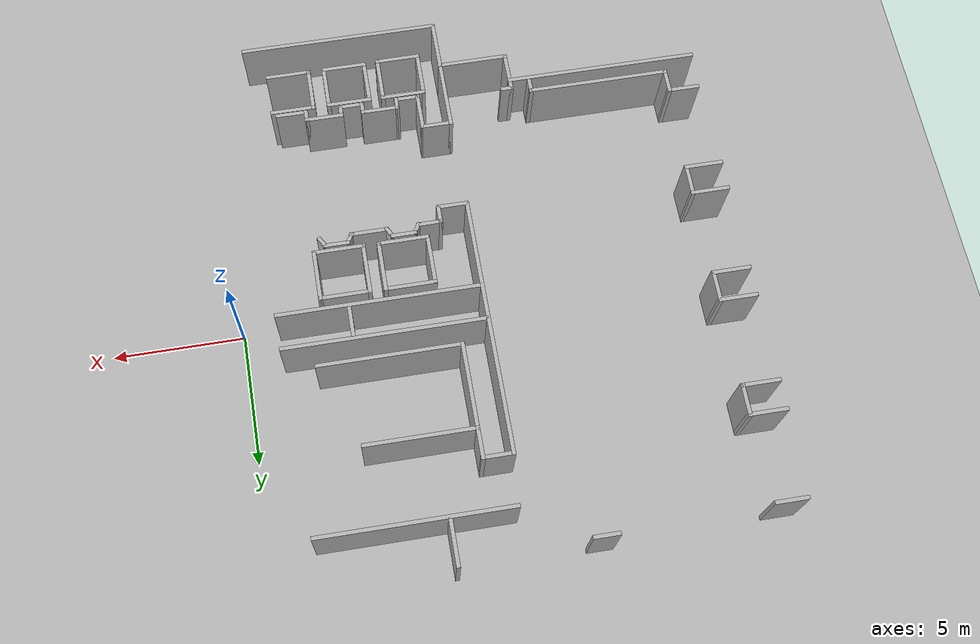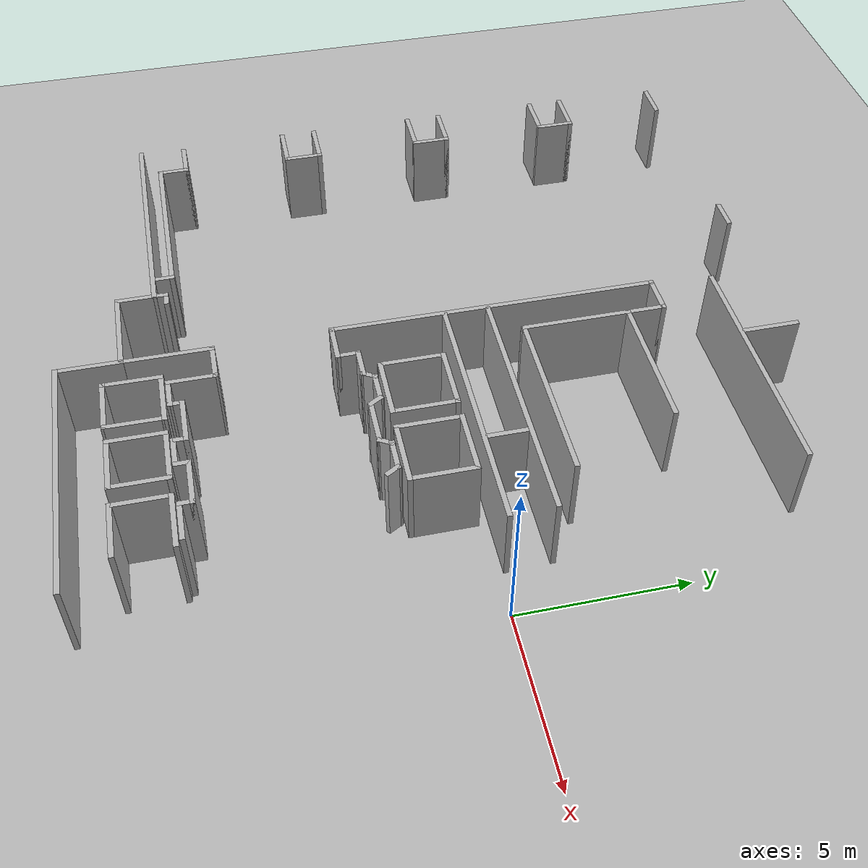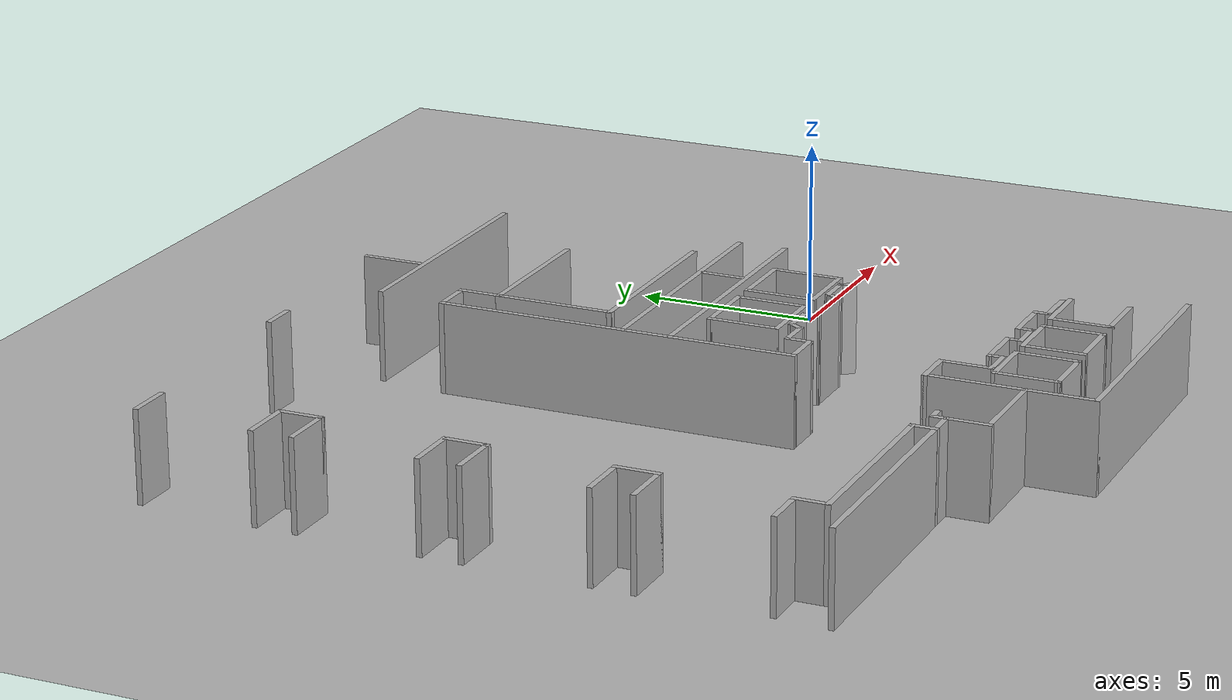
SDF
<sdf version="1.9">
 <world name="tsudanuma2-3">
  <model name="ground_plane">
   <static>true</static>
   <link name="link">
    <collision name="collision">
     <geometry><plane><normal>0 0 1</normal><size>100 100</size></plane></geometry>
     <surface>
      <contact><collide_bitmask>65535</collide_bitmask></contact>
      <friction><ode><mu>100</mu><mu2>50</mu2></ode></friction>
     </surface>
    </collision>
    <visual name="visual">
     <cast_shadows>false</cast_shadows>
     <geometry><plane><normal>0 0 1</normal><size>100 100</size></plane></geometry>
     <material>
      <ambient>0.5 0.5 0.5 1</ambient>
      <diffuse>0.7 0.7 0.7 1</diffuse>
      <specular>0.1 0.1 0.1 1</specular>
     </material>
    </visual>
   </link>
  </model>
  <model name="Tsudanuma_2-3-without_door">
   <pose>11.859500000000001 12.3796 0 0 0 0</pose>
   <link name="Wall_1">
    <collision name="Wall_1_Collision">
     <geometry><box><size>7.4536300000000004 0.14999999999999999 2.5</size></box></geometry>
     <pose>0 0 1.25 0 0 0</pose>
    </collision>
    <visual name="Wall_1_Visual">
     <pose>0 0 1.25 0 0 0</pose>
     <geometry><box><size>7.4536300000000004 0.14999999999999999 2.5</size></box></geometry>
     <material>
      <ambient>0.5 0.5 0.5 1</ambient>
      <diffuse>0.7 0.7 0.7 1</diffuse>
      <specular>0.1 0.1 0.1 1</specular>
     </material>
     <meta><layer>0</layer></meta>
    </visual>
    <pose>-27.1739 -20.558599999999998 0 0 0 -0.00038999999999999994</pose>
   </link>
   <link name="Wall_121">
    <collision name="Wall_121_Collision">
     <geometry><box><size>7.32925 0.14999999999999999 2.5</size></box></geometry>
     <pose>0 0 1.25 0 0 0</pose>
    </collision>
    <visual name="Wall_121_Visual">
     <pose>0 0 1.25 0 0 0</pose>
     <geometry><box><size>7.32925 0.14999999999999999 2.5</size></box></geometry>
     <material>
      <ambient>0.5 0.5 0.5 1</ambient>
      <diffuse>0.7 0.7 0.7 1</diffuse>
      <specular>0.1 0.1 0.1 1</specular>
     </material>
     <meta><layer>0</layer></meta>
    </visual>
    <pose>-17.1797 -3.8258299999999998 0 0 0 0</pose>
   </link>
   <link name="Wall_138">
    <collision name="Wall_138_Collision">
     <geometry><box><size>1.75 0.14999999999999999 2.5</size></box></geometry>
     <pose>0 0 1.25 0 0 0</pose>
    </collision>
    <visual name="Wall_138_Visual">
     <pose>0 0 1.25 0 0 0</pose>
     <geometry><box><size>1.75 0.14999999999999999 2.5</size></box></geometry>
     <material>
      <ambient>0.5 0.5 0.5 1</ambient>
      <diffuse>0.7 0.7 0.7 1</diffuse>
      <specular>0.1 0.1 0.1 1</specular>
     </material>
     <meta><layer>0</layer></meta>
    </visual>
    <pose>-18.371099999999998 -2.9072100000000001 0 0 0 -1.5708</pose>
   </link>
   <link name="Wall_140">
    <collision name="Wall_140_Collision">
     <geometry><box><size>4.25 0.14999999999999999 2.5</size></box></geometry>
     <pose>0 0 1.25 0 0 0</pose>
    </collision>
    <visual name="Wall_140_Visual">
     <pose>0 0 1.25 0 0 0</pose>
     <geometry><box><size>4.25 0.14999999999999999 2.5</size></box></geometry>
     <material>
      <ambient>0.5 0.5 0.5 1</ambient>
      <diffuse>0.7 0.7 0.7 1</diffuse>
      <specular>0.1 0.1 0.1 1</specular>
     </material>
     <meta><layer>0</layer></meta>
    </visual>
    <pose>-17.807400000000001 -6.8076699999999999 0 0 0 3.1415899999999999</pose>
   </link>
   <link name="Wall_141">
    <collision name="Wall_141_Collision">
     <geometry><box><size>1.25 0.14999999999999999 2.5</size></box></geometry>
     <pose>0 0 1.25 0 0 0</pose>
    </collision>
    <visual name="Wall_141_Visual">
     <pose>0 0 1.25 0 0 0</pose>
     <geometry><box><size>1.25 0.14999999999999999 2.5</size></box></geometry>
     <material>
      <ambient>0.5 0.5 0.5 1</ambient>
      <diffuse>0.7 0.7 0.7 1</diffuse>
      <specular>0.1 0.1 0.1 1</specular>
     </material>
     <meta><layer>0</layer></meta>
    </visual>
    <pose>-19.857399999999998 -6.2576700000000001 0 0 0 1.5708</pose>
   </link>
   <link name="Wall_142">
    <collision name="Wall_142_Collision">
     <geometry><box><size>1.25 0.14999999999999999 2.5</size></box></geometry>
     <pose>0 0 1.25 0 0 0</pose>
    </collision>
    <visual name="Wall_142_Visual">
     <pose>0 0 1.25 0 0 0</pose>
     <geometry><box><size>1.25 0.14999999999999999 2.5</size></box></geometry>
     <material>
      <ambient>0.5 0.5 0.5 1</ambient>
      <diffuse>0.7 0.7 0.7 1</diffuse>
      <specular>0.1 0.1 0.1 1</specular>
     </material>
     <meta><layer>0</layer></meta>
    </visual>
    <pose>-20.407399999999999 -5.7076700000000002 0 0 0 3.1415899999999999</pose>
   </link>
   <link name="Wall_143">
    <collision name="Wall_143_Collision">
     <geometry><box><size>10 0.14999999999999999 2.5</size></box></geometry>
     <pose>0 0 1.25 0 0 0</pose>
    </collision>
    <visual name="Wall_143_Visual">
     <pose>0 0 1.25 0 0 0</pose>
     <geometry><box><size>10 0.14999999999999999 2.5</size></box></geometry>
     <material>
      <ambient>0.5 0.5 0.5 1</ambient>
      <diffuse>0.7 0.7 0.7 1</diffuse>
      <specular>0.1 0.1 0.1 1</specular>
     </material>
     <meta><layer>0</layer></meta>
    </visual>
    <pose>-20.9574 -10.6327 0 0 0 -1.5708</pose>
   </link>
   <link name="Wall_144">
    <collision name="Wall_144_Collision">
     <geometry><box><size>1.25 0.14999999999999999 2.5</size></box></geometry>
     <pose>0 0 1.25 0 0 0</pose>
    </collision>
    <visual name="Wall_144_Visual">
     <pose>0 0 1.25 0 0 0</pose>
     <geometry><box><size>1.25 0.14999999999999999 2.5</size></box></geometry>
     <material>
      <ambient>0.5 0.5 0.5 1</ambient>
      <diffuse>0.7 0.7 0.7 1</diffuse>
      <specular>0.1 0.1 0.1 1</specular>
     </material>
     <meta><layer>0</layer></meta>
    </visual>
    <pose>-20.407399999999999 -15.557700000000001 0 0 0 0</pose>
   </link>
   <link name="Wall_145">
    <collision name="Wall_145_Collision">
     <geometry><box><size>0.75 0.14999999999999999 2.5</size></box></geometry>
     <pose>0 0 1.25 0 0 0</pose>
    </collision>
    <visual name="Wall_145_Visual">
     <pose>0 0 1.25 0 0 0</pose>
     <geometry><box><size>0.75 0.14999999999999999 2.5</size></box></geometry>
     <material>
      <ambient>0.5 0.5 0.5 1</ambient>
      <diffuse>0.7 0.7 0.7 1</diffuse>
      <specular>0.1 0.1 0.1 1</specular>
     </material>
     <meta><layer>0</layer></meta>
    </visual>
    <pose>-19.857399999999998 -15.2577 0 0 0 1.5708</pose>
   </link>
   <link name="Wall_146">
    <collision name="Wall_146_Collision">
     <geometry><box><size>1 0.14999999999999999 2.5</size></box></geometry>
     <pose>0 0 1.25 0 0 0</pose>
    </collision>
    <visual name="Wall_146_Visual">
     <pose>0 0 1.25 0 0 0</pose>
     <geometry><box><size>1 0.14999999999999999 2.5</size></box></geometry>
     <material>
      <ambient>0.5 0.5 0.5 1</ambient>
      <diffuse>0.7 0.7 0.7 1</diffuse>
      <specular>0.1 0.1 0.1 1</specular>
     </material>
     <meta><layer>0</layer></meta>
    </visual>
    <pose>-19.432400000000001 -14.957700000000001 0 0 0 0</pose>
   </link>
   <link name="Wall_147">
    <collision name="Wall_147_Collision">
     <geometry><box><size>0.5 0.14999999999999999 2.5</size></box></geometry>
     <pose>0 0 1.25 0 0 0</pose>
    </collision>
    <visual name="Wall_147_Visual">
     <pose>0 0 1.25 0 0 0</pose>
     <geometry><box><size>0.5 0.14999999999999999 2.5</size></box></geometry>
     <material>
      <ambient>0.5 0.5 0.5 1</ambient>
      <diffuse>0.7 0.7 0.7 1</diffuse>
      <specular>0.1 0.1 0.1 1</specular>
     </material>
     <meta><layer>0</layer></meta>
    </visual>
    <pose>-18.919899999999998 -14.806100000000001 0 0 0 1.0471999999999999</pose>
   </link>
   <link name="Wall_148">
    <collision name="Wall_148_Collision">
     <geometry><box><size>1 0.14999999999999999 2.5</size></box></geometry>
     <pose>0 0 1.25 0 0 0</pose>
    </collision>
    <visual name="Wall_148_Visual">
     <pose>0 0 1.25 0 0 0</pose>
     <geometry><box><size>1 0.14999999999999999 2.5</size></box></geometry>
     <material>
      <ambient>0.5 0.5 0.5 1</ambient>
      <diffuse>0.7 0.7 0.7 1</diffuse>
      <specular>0.1 0.1 0.1 1</specular>
     </material>
     <meta><layer>0</layer></meta>
    </visual>
    <pose>-18.407399999999999 -14.6546 0 0 0 0</pose>
   </link>
   <link name="Wall_149">
    <collision name="Wall_149_Collision">
     <geometry><box><size>0.5 0.14999999999999999 2.5</size></box></geometry>
     <pose>0 0 1.25 0 0 0</pose>
    </collision>
    <visual name="Wall_149_Visual">
     <pose>0 0 1.25 0 0 0</pose>
     <geometry><box><size>0.5 0.14999999999999999 2.5</size></box></geometry>
     <material>
      <ambient>0.5 0.5 0.5 1</ambient>
      <diffuse>0.7 0.7 0.7 1</diffuse>
      <specular>0.1 0.1 0.1 1</specular>
     </material>
     <meta><layer>0</layer></meta>
    </visual>
    <pose>-17.8949 -14.806100000000001 0 0 0 -1.0471999999999999</pose>
   </link>
   <link name="Wall_150">
    <collision name="Wall_150_Collision">
     <geometry><box><size>1.5 0.14999999999999999 2.5</size></box></geometry>
     <pose>0 0 1.25 0 0 0</pose>
    </collision>
    <visual name="Wall_150_Visual">
     <pose>0 0 1.25 0 0 0</pose>
     <geometry><box><size>1.5 0.14999999999999999 2.5</size></box></geometry>
     <material>
      <ambient>0.5 0.5 0.5 1</ambient>
      <diffuse>0.7 0.7 0.7 1</diffuse>
      <specular>0.1 0.1 0.1 1</specular>
     </material>
     <meta><layer>0</layer></meta>
    </visual>
    <pose>-17.132400000000001 -14.957700000000001 0 0 0 0</pose>
   </link>
   <link name="Wall_151">
    <collision name="Wall_151_Collision">
     <geometry><box><size>0.5 0.14999999999999999 2.5</size></box></geometry>
     <pose>0 0 1.25 0 0 0</pose>
    </collision>
    <visual name="Wall_151_Visual">
     <pose>0 0 1.25 0 0 0</pose>
     <geometry><box><size>0.5 0.14999999999999999 2.5</size></box></geometry>
     <material>
      <ambient>0.5 0.5 0.5 1</ambient>
      <diffuse>0.7 0.7 0.7 1</diffuse>
      <specular>0.1 0.1 0.1 1</specular>
     </material>
     <meta><layer>0</layer></meta>
    </visual>
    <pose>-16.369900000000001 -14.806100000000001 0 0 0 1.0471999999999999</pose>
   </link>
   <link name="Wall_152">
    <collision name="Wall_152_Collision">
     <geometry><box><size>1 0.14999999999999999 2.5</size></box></geometry>
     <pose>0 0 1.25 0 0 0</pose>
    </collision>
    <visual name="Wall_152_Visual">
     <pose>0 0 1.25 0 0 0</pose>
     <geometry><box><size>1 0.14999999999999999 2.5</size></box></geometry>
     <material>
      <ambient>0.5 0.5 0.5 1</ambient>
      <diffuse>0.7 0.7 0.7 1</diffuse>
      <specular>0.1 0.1 0.1 1</specular>
     </material>
     <meta><layer>0</layer></meta>
    </visual>
    <pose>-15.8574 -14.6546 0 0 0 0</pose>
   </link>
   <link name="Wall_153">
    <collision name="Wall_153_Collision">
     <geometry><box><size>0.5 0.14999999999999999 2.5</size></box></geometry>
     <pose>0 0 1.25 0 0 0</pose>
    </collision>
    <visual name="Wall_153_Visual">
     <pose>0 0 1.25 0 0 0</pose>
     <geometry><box><size>0.5 0.14999999999999999 2.5</size></box></geometry>
     <material>
      <ambient>0.5 0.5 0.5 1</ambient>
      <diffuse>0.7 0.7 0.7 1</diffuse>
      <specular>0.1 0.1 0.1 1</specular>
     </material>
     <meta><layer>0</layer></meta>
    </visual>
    <pose>-15.344900000000001 -14.806100000000001 0 0 0 -1.0471999999999999</pose>
   </link>
   <link name="Wall_160">
    <collision name="Wall_160_Collision">
     <geometry><box><size>5.5 0.14999999999999999 2.5</size></box></geometry>
     <pose>0 0 1.25 0 0 0</pose>
    </collision>
    <visual name="Wall_160_Visual">
     <pose>0 0 1.25 0 0 0</pose>
     <geometry><box><size>5.5 0.14999999999999999 2.5</size></box></geometry>
     <material>
      <ambient>0.5 0.5 0.5 1</ambient>
      <diffuse>0.7 0.7 0.7 1</diffuse>
      <specular>0.1 0.1 0.1 1</specular>
     </material>
     <meta><layer>0</layer></meta>
    </visual>
    <pose>-17.1919 -10.0068 0 0 0 3.1415899999999999</pose>
   </link>
   <link name="Wall_161">
    <collision name="Wall_161_Collision">
     <geometry><box><size>3.3492099999999998 0.14999999999999999 2.5</size></box></geometry>
     <pose>0 0 1.25 0 0 0</pose>
    </collision>
    <visual name="Wall_161_Visual">
     <pose>0 0 1.25 0 0 0</pose>
     <geometry><box><size>3.3492099999999998 0.14999999999999999 2.5</size></box></geometry>
     <material>
      <ambient>0.5 0.5 0.5 1</ambient>
      <diffuse>0.7 0.7 0.7 1</diffuse>
      <specular>0.1 0.1 0.1 1</specular>
     </material>
     <meta><layer>0</layer></meta>
    </visual>
    <pose>-19.857399999999998 -8.4072099999999992 0 0 0 1.5708</pose>
   </link>
   <link name="Wall_165">
    <collision name="Wall_165_Collision">
     <geometry><box><size>7.7000000000000002 0.14999999999999999 2.5</size></box></geometry>
     <pose>0 0 1.25 0 0 0</pose>
    </collision>
    <visual name="Wall_165_Visual">
     <pose>0 0 1.25 0 0 0</pose>
     <geometry><box><size>7.7000000000000002 0.14999999999999999 2.5</size></box></geometry>
     <material>
      <ambient>0.5 0.5 0.5 1</ambient>
      <diffuse>0.7 0.7 0.7 1</diffuse>
      <specular>0.1 0.1 0.1 1</specular>
     </material>
     <meta><layer>0</layer></meta>
    </visual>
    <pose>-17.101900000000001 -10.852499999999999 0 0 0 0</pose>
   </link>
   <link name="Wall_167">
    <collision name="Wall_167_Collision">
     <geometry><box><size>7.75 0.14999999999999999 2.5</size></box></geometry>
     <pose>0 0 1.25 0 0 0</pose>
    </collision>
    <visual name="Wall_167_Visual">
     <pose>0 0 1.25 0 0 0</pose>
     <geometry><box><size>7.75 0.14999999999999999 2.5</size></box></geometry>
     <material>
      <ambient>0.5 0.5 0.5 1</ambient>
      <diffuse>0.7 0.7 0.7 1</diffuse>
      <specular>0.1 0.1 0.1 1</specular>
     </material>
     <meta><layer>0</layer></meta>
    </visual>
    <pose>-17.093499999999999 -12.1708 0 0 0 0</pose>
   </link>
   <link name="Wall_169">
    <collision name="Wall_169_Collision">
     <geometry><box><size>1.25 0.14999999999999999 2.5</size></box></geometry>
     <pose>0 0 1.25 0 0 0</pose>
    </collision>
    <visual name="Wall_169_Visual">
     <pose>0 0 1.25 0 0 0</pose>
     <geometry><box><size>1.25 0.14999999999999999 2.5</size></box></geometry>
     <material>
      <ambient>0.5 0.5 0.5 1</ambient>
      <diffuse>0.7 0.7 0.7 1</diffuse>
      <specular>0.1 0.1 0.1 1</specular>
     </material>
     <meta><layer>0</layer></meta>
    </visual>
    <pose>-15.9785 -11.495100000000001 0 0 0 -1.5708</pose>
   </link>
   <link name="Wall_176">
    <collision name="Wall_176_Collision">
     <geometry><box><size>2.75 0.14999999999999999 2.5</size></box></geometry>
     <pose>0 0 1.25 0 0 0</pose>
    </collision>
    <visual name="Wall_176_Visual">
     <pose>0 0 1.25 0 0 0</pose>
     <geometry><box><size>2.75 0.14999999999999999 2.5</size></box></geometry>
     <material>
      <ambient>0.5 0.5 0.5 1</ambient>
      <diffuse>0.7 0.7 0.7 1</diffuse>
      <specular>0.1 0.1 0.1 1</specular>
     </material>
     <meta><layer>0</layer></meta>
    </visual>
    <pose>-20.9221 -20.359999999999999 0 0 0 1.5708</pose>
   </link>
   <link name="Wall_177">
    <collision name="Wall_177_Collision">
     <geometry><box><size>1.25 0.14999999999999999 2.5</size></box></geometry>
     <pose>0 0 1.25 0 0 0</pose>
    </collision>
    <visual name="Wall_177_Visual">
     <pose>0 0 1.25 0 0 0</pose>
     <geometry><box><size>1.25 0.14999999999999999 2.5</size></box></geometry>
     <material>
      <ambient>0.5 0.5 0.5 1</ambient>
      <diffuse>0.7 0.7 0.7 1</diffuse>
      <specular>0.1 0.1 0.1 1</specular>
     </material>
     <meta><layer>0</layer></meta>
    </visual>
    <pose>-20.3721 -19.059999999999999 0 0 0 0</pose>
   </link>
   <link name="Wall_178">
    <collision name="Wall_178_Collision">
     <geometry><box><size>1.4923500000000001 0.14999999999999999 2.5</size></box></geometry>
     <pose>0 0 1.25 0 0 0</pose>
    </collision>
    <visual name="Wall_178_Visual">
     <pose>0 0 1.25 0 0 0</pose>
     <geometry><box><size>1.4923500000000001 0.14999999999999999 2.5</size></box></geometry>
     <material>
      <ambient>0.5 0.5 0.5 1</ambient>
      <diffuse>0.7 0.7 0.7 1</diffuse>
      <specular>0.1 0.1 0.1 1</specular>
     </material>
     <meta><layer>0</layer></meta>
    </visual>
    <pose>-19.821400000000001 -19.731200000000001 0 0 0 -1.56976</pose>
   </link>
   <link name="Wall_179">
    <collision name="Wall_179_Collision">
     <geometry><box><size>1 0.14999999999999999 2.5</size></box></geometry>
     <pose>0 0 1.25 0 0 0</pose>
    </collision>
    <visual name="Wall_179_Visual">
     <pose>0 0 1.25 0 0 0</pose>
     <geometry><box><size>1 0.14999999999999999 2.5</size></box></geometry>
     <material>
      <ambient>0.5 0.5 0.5 1</ambient>
      <diffuse>0.7 0.7 0.7 1</diffuse>
      <specular>0.1 0.1 0.1 1</specular>
     </material>
     <meta><layer>0</layer></meta>
    </visual>
    <pose>-19.395700000000001 -20.4038 0 0 0 0</pose>
   </link>
   <link name="Wall_180">
    <collision name="Wall_180_Collision">
     <geometry><box><size>0.49235499999999999 0.14999999999999999 2.5</size></box></geometry>
     <pose>0 0 1.25 0 0 0</pose>
    </collision>
    <visual name="Wall_180_Visual">
     <pose>0 0 1.25 0 0 0</pose>
     <geometry><box><size>0.49235499999999999 0.14999999999999999 2.5</size></box></geometry>
     <material>
      <ambient>0.5 0.5 0.5 1</ambient>
      <diffuse>0.7 0.7 0.7 1</diffuse>
      <specular>0.1 0.1 0.1 1</specular>
     </material>
     <meta><layer>0</layer></meta>
    </visual>
    <pose>-18.971399999999999 -20.231200000000001 0 0 0 1.5748500000000001</pose>
   </link>
   <link name="Wall_181">
    <collision name="Wall_181_Collision">
     <geometry><box><size>1.5 0.14999999999999999 2.5</size></box></geometry>
     <pose>0 0 1.25 0 0 0</pose>
    </collision>
    <visual name="Wall_181_Visual">
     <pose>0 0 1.25 0 0 0</pose>
     <geometry><box><size>1.5 0.14999999999999999 2.5</size></box></geometry>
     <material>
      <ambient>0.5 0.5 0.5 1</ambient>
      <diffuse>0.7 0.7 0.7 1</diffuse>
      <specular>0.1 0.1 0.1 1</specular>
     </material>
     <meta><layer>0</layer></meta>
    </visual>
    <pose>-18.2971 -20.059999999999999 0 0 0 0</pose>
   </link>
   <link name="Wall_182">
    <collision name="Wall_182_Collision">
     <geometry><box><size>0.502135 0.14999999999999999 2.5</size></box></geometry>
     <pose>0 0 1.25 0 0 0</pose>
    </collision>
    <visual name="Wall_182_Visual">
     <pose>0 0 1.25 0 0 0</pose>
     <geometry><box><size>0.502135 0.14999999999999999 2.5</size></box></geometry>
     <material>
      <ambient>0.5 0.5 0.5 1</ambient>
      <diffuse>0.7 0.7 0.7 1</diffuse>
      <specular>0.1 0.1 0.1 1</specular>
     </material>
     <meta><layer>0</layer></meta>
    </visual>
    <pose>-17.6221 -20.2361 0 0 0 -1.5708</pose>
   </link>
   <link name="Wall_183">
    <collision name="Wall_183_Collision">
     <geometry><box><size>1 0.14999999999999999 2.5</size></box></geometry>
     <pose>0 0 1.25 0 0 0</pose>
    </collision>
    <visual name="Wall_183_Visual">
     <pose>0 0 1.25 0 0 0</pose>
     <geometry><box><size>1 0.14999999999999999 2.5</size></box></geometry>
     <material>
      <ambient>0.5 0.5 0.5 1</ambient>
      <diffuse>0.7 0.7 0.7 1</diffuse>
      <specular>0.1 0.1 0.1 1</specular>
     </material>
     <meta><layer>0</layer></meta>
    </visual>
    <pose>-17.198499999999999 -20.412199999999999 0 0 0 0</pose>
   </link>
   <link name="Wall_184">
    <collision name="Wall_184_Collision">
     <geometry><box><size>0.502135 0.14999999999999999 2.5</size></box></geometry>
     <pose>0 0 1.25 0 0 0</pose>
    </collision>
    <visual name="Wall_184_Visual">
     <pose>0 0 1.25 0 0 0</pose>
     <geometry><box><size>0.502135 0.14999999999999999 2.5</size></box></geometry>
     <material>
      <ambient>0.5 0.5 0.5 1</ambient>
      <diffuse>0.7 0.7 0.7 1</diffuse>
      <specular>0.1 0.1 0.1 1</specular>
     </material>
     <meta><layer>0</layer></meta>
    </visual>
    <pose>-16.772099999999998 -20.2361 0 0 0 1.5708</pose>
   </link>
   <link name="Wall_185">
    <collision name="Wall_185_Collision">
     <geometry><box><size>1.5 0.14999999999999999 2.5</size></box></geometry>
     <pose>0 0 1.25 0 0 0</pose>
    </collision>
    <visual name="Wall_185_Visual">
     <pose>0 0 1.25 0 0 0</pose>
     <geometry><box><size>1.5 0.14999999999999999 2.5</size></box></geometry>
     <material>
      <ambient>0.5 0.5 0.5 1</ambient>
      <diffuse>0.7 0.7 0.7 1</diffuse>
      <specular>0.1 0.1 0.1 1</specular>
     </material>
     <meta><layer>0</layer></meta>
    </visual>
    <pose>-16.097100000000001 -20.059999999999999 0 0 0 0</pose>
   </link>
   <link name="Wall_186">
    <collision name="Wall_186_Collision">
     <geometry><box><size>0.5 0.14999999999999999 2.5</size></box></geometry>
     <pose>0 0 1.25 0 0 0</pose>
    </collision>
    <visual name="Wall_186_Visual">
     <pose>0 0 1.25 0 0 0</pose>
     <geometry><box><size>0.5 0.14999999999999999 2.5</size></box></geometry>
     <material>
      <ambient>0.5 0.5 0.5 1</ambient>
      <diffuse>0.7 0.7 0.7 1</diffuse>
      <specular>0.1 0.1 0.1 1</specular>
     </material>
     <meta><layer>0</layer></meta>
    </visual>
    <pose>-15.4221 -20.234999999999999 0 0 0 -1.5708</pose>
   </link>
   <link name="Wall_187">
    <collision name="Wall_187_Collision">
     <geometry><box><size>1.25 0.14999999999999999 2.5</size></box></geometry>
     <pose>0 0 1.25 0 0 0</pose>
    </collision>
    <visual name="Wall_187_Visual">
     <pose>0 0 1.25 0 0 0</pose>
     <geometry><box><size>1.25 0.14999999999999999 2.5</size></box></geometry>
     <material>
      <ambient>0.5 0.5 0.5 1</ambient>
      <diffuse>0.7 0.7 0.7 1</diffuse>
      <specular>0.1 0.1 0.1 1</specular>
     </material>
     <meta><layer>0</layer></meta>
    </visual>
    <pose>-14.8721 -20.41 0 0 0 0</pose>
   </link>
   <link name="Wall_2">
    <collision name="Wall_2_Collision">
     <geometry><box><size>1.25 0.14999999999999999 2.5</size></box></geometry>
     <pose>0 0 1.25 0 0 0</pose>
    </collision>
    <visual name="Wall_2_Visual">
     <pose>0 0 1.25 0 0 0</pose>
     <geometry><box><size>1.25 0.14999999999999999 2.5</size></box></geometry>
     <material>
      <ambient>0.5 0.5 0.5 1</ambient>
      <diffuse>0.7 0.7 0.7 1</diffuse>
      <specular>0.1 0.1 0.1 1</specular>
     </material>
     <meta><layer>0</layer></meta>
    </visual>
    <pose>-23.522099999999998 -21.109999999999999 0 0 0 -1.5708</pose>
   </link>
   <link name="Wall_28">
    <collision name="Wall_28_Collision">
     <geometry><box><size>0.5 0.14999999999999999 2.5</size></box></geometry>
     <pose>0 0 1.25 0 0 0</pose>
    </collision>
    <visual name="Wall_28_Visual">
     <pose>0 0 1.25 0 0 0</pose>
     <geometry><box><size>0.5 0.14999999999999999 2.5</size></box></geometry>
     <material>
      <ambient>0.5 0.5 0.5 1</ambient>
      <diffuse>0.7 0.7 0.7 1</diffuse>
      <specular>0.1 0.1 0.1 1</specular>
     </material>
     <meta><layer>0</layer></meta>
    </visual>
    <pose>-23.522099999999998 -20.385000000000002 0 0 0 1.5708</pose>
   </link>
   <link name="Wall_29">
    <collision name="Wall_29_Collision">
     <geometry><box><size>0.5 0.14999999999999999 2.5</size></box></geometry>
     <pose>0 0 1.25 0 0 0</pose>
    </collision>
    <visual name="Wall_29_Visual">
     <pose>0 0 1.25 0 0 0</pose>
     <geometry><box><size>0.5 0.14999999999999999 2.5</size></box></geometry>
     <material>
      <ambient>0.5 0.5 0.5 1</ambient>
      <diffuse>0.7 0.7 0.7 1</diffuse>
      <specular>0.1 0.1 0.1 1</specular>
     </material>
     <meta><layer>0</layer></meta>
    </visual>
    <pose>-23.347100000000001 -20.210000000000001 0 0 0 0</pose>
   </link>
   <link name="Wall_3">
    <collision name="Wall_3_Collision">
     <geometry><box><size>2.75 0.14999999999999999 2.5</size></box></geometry>
     <pose>0 0 1.25 0 0 0</pose>
    </collision>
    <visual name="Wall_3_Visual">
     <pose>0 0 1.25 0 0 0</pose>
     <geometry><box><size>2.75 0.14999999999999999 2.5</size></box></geometry>
     <material>
      <ambient>0.5 0.5 0.5 1</ambient>
      <diffuse>0.7 0.7 0.7 1</diffuse>
      <specular>0.1 0.1 0.1 1</specular>
     </material>
     <meta><layer>0</layer></meta>
    </visual>
    <pose>-22.222100000000001 -21.66 0 0 0 0</pose>
   </link>
   <link name="Wall_4">
    <collision name="Wall_4_Collision">
     <geometry><box><size>2 0.14999999999999999 2.5</size></box></geometry>
     <pose>0 0 1.25 0 0 0</pose>
    </collision>
    <visual name="Wall_4_Visual">
     <pose>0 0 1.25 0 0 0</pose>
     <geometry><box><size>2 0.14999999999999999 2.5</size></box></geometry>
     <material>
      <ambient>0.5 0.5 0.5 1</ambient>
      <diffuse>0.7 0.7 0.7 1</diffuse>
      <specular>0.1 0.1 0.1 1</specular>
     </material>
     <meta><layer>0</layer></meta>
    </visual>
    <pose>-20.9221 -22.585000000000001 0 0 0 -1.5708</pose>
   </link>
   <link name="Wall_451">
    <collision name="Wall_451_Collision">
     <geometry><box><size>0.75 0.14999999999999999 2.5</size></box></geometry>
     <pose>0 0 1.25 0 0 0</pose>
    </collision>
    <visual name="Wall_451_Visual">
     <pose>0 0 1.25 0 0 0</pose>
     <geometry><box><size>0.75 0.14999999999999999 2.5</size></box></geometry>
     <material>
      <ambient>0.5 0.5 0.5 1</ambient>
      <diffuse>0.7 0.7 0.7 1</diffuse>
      <specular>0.1 0.1 0.1 1</specular>
     </material>
     <meta><layer>0</layer></meta>
    </visual>
    <pose>-24.275500000000001 -20.261800000000001 0 0 0 1.5708</pose>
   </link>
   <link name="Wall_452">
    <collision name="Wall_452_Collision">
     <geometry><box><size>5.5130600000000003 0.14999999999999999 2.5</size></box></geometry>
     <pose>0 0 1.25 0 0 0</pose>
    </collision>
    <visual name="Wall_452_Visual">
     <pose>0 0 1.25 0 0 0</pose>
     <geometry><box><size>5.5130600000000003 0.14999999999999999 2.5</size></box></geometry>
     <material>
      <ambient>0.5 0.5 0.5 1</ambient>
      <diffuse>0.7 0.7 0.7 1</diffuse>
      <specular>0.1 0.1 0.1 1</specular>
     </material>
     <meta><layer>0</layer></meta>
    </visual>
    <pose>-26.956900000000001 -19.974599999999999 0 0 0 -3.1415899999999999</pose>
   </link>
   <link name="Wall_453">
    <collision name="Wall_453_Collision">
     <geometry><box><size>1 0.14999999999999999 2.5</size></box></geometry>
     <pose>0 0 1.25 0 0 0</pose>
    </collision>
    <visual name="Wall_453_Visual">
     <pose>0 0 1.25 0 0 0</pose>
     <geometry><box><size>1 0.14999999999999999 2.5</size></box></geometry>
     <material>
      <ambient>0.5 0.5 0.5 1</ambient>
      <diffuse>0.7 0.7 0.7 1</diffuse>
      <specular>0.1 0.1 0.1 1</specular>
     </material>
     <meta><layer>0</layer></meta>
    </visual>
    <pose>-29.638300000000001 -19.549600000000002 0 0 0 1.5708</pose>
   </link>
   <link name="Wall_454">
    <collision name="Wall_454_Collision">
     <geometry><box><size>1.25 0.14999999999999999 2.5</size></box></geometry>
     <pose>0 0 1.25 0 0 0</pose>
    </collision>
    <visual name="Wall_454_Visual">
     <pose>0 0 1.25 0 0 0</pose>
     <geometry><box><size>1.25 0.14999999999999999 2.5</size></box></geometry>
     <material>
      <ambient>0.5 0.5 0.5 1</ambient>
      <diffuse>0.7 0.7 0.7 1</diffuse>
      <specular>0.1 0.1 0.1 1</specular>
     </material>
     <meta><layer>0</layer></meta>
    </visual>
    <pose>-30.188300000000002 -19.124600000000001 0 0 0 3.1415899999999999</pose>
   </link>
   <link name="Wall_456">
    <collision name="Wall_456_Collision">
     <geometry><box><size>1.5 0.14999999999999999 2.5</size></box></geometry>
     <pose>0 0 1.25 0 0 0</pose>
    </collision>
    <visual name="Wall_456_Visual">
     <pose>0 0 1.25 0 0 0</pose>
     <geometry><box><size>1.5 0.14999999999999999 2.5</size></box></geometry>
     <material>
      <ambient>0.5 0.5 0.5 1</ambient>
      <diffuse>0.7 0.7 0.7 1</diffuse>
      <specular>0.1 0.1 0.1 1</specular>
     </material>
     <meta><layer>0</layer></meta>
    </visual>
    <pose>-30.1953 -15.719099999999999 0 0 0 0</pose>
   </link>
   <link name="Wall_457">
    <collision name="Wall_457_Collision">
     <geometry><box><size>1.25 0.14999999999999999 2.5</size></box></geometry>
     <pose>0 0 1.25 0 0 0</pose>
    </collision>
    <visual name="Wall_457_Visual">
     <pose>0 0 1.25 0 0 0</pose>
     <geometry><box><size>1.25 0.14999999999999999 2.5</size></box></geometry>
     <material>
      <ambient>0.5 0.5 0.5 1</ambient>
      <diffuse>0.7 0.7 0.7 1</diffuse>
      <specular>0.1 0.1 0.1 1</specular>
     </material>
     <meta><layer>0</layer></meta>
    </visual>
    <pose>-29.520299999999999 -15.1691 0 0 0 1.5708</pose>
   </link>
   <link name="Wall_458">
    <collision name="Wall_458_Collision">
     <geometry><box><size>1.5 0.14999999999999999 2.5</size></box></geometry>
     <pose>0 0 1.25 0 0 0</pose>
    </collision>
    <visual name="Wall_458_Visual">
     <pose>0 0 1.25 0 0 0</pose>
     <geometry><box><size>1.5 0.14999999999999999 2.5</size></box></geometry>
     <material>
      <ambient>0.5 0.5 0.5 1</ambient>
      <diffuse>0.7 0.7 0.7 1</diffuse>
      <specular>0.1 0.1 0.1 1</specular>
     </material>
     <meta><layer>0</layer></meta>
    </visual>
    <pose>-30.1953 -14.6191 0 0 0 3.1415899999999999</pose>
   </link>
   <link name="Wall_460">
    <collision name="Wall_460_Collision">
     <geometry><box><size>1.5 0.14999999999999999 2.5</size></box></geometry>
     <pose>0 0 1.25 0 0 0</pose>
    </collision>
    <visual name="Wall_460_Visual">
     <pose>0 0 1.25 0 0 0</pose>
     <geometry><box><size>1.5 0.14999999999999999 2.5</size></box></geometry>
     <material>
      <ambient>0.5 0.5 0.5 1</ambient>
      <diffuse>0.7 0.7 0.7 1</diffuse>
      <specular>0.1 0.1 0.1 1</specular>
     </material>
     <meta><layer>0</layer></meta>
    </visual>
    <pose>-30.1953 -11.2881 0 0 0 0</pose>
   </link>
   <link name="Wall_461">
    <collision name="Wall_461_Collision">
     <geometry><box><size>1.25 0.14999999999999999 2.5</size></box></geometry>
     <pose>0 0 1.25 0 0 0</pose>
    </collision>
    <visual name="Wall_461_Visual">
     <pose>0 0 1.25 0 0 0</pose>
     <geometry><box><size>1.25 0.14999999999999999 2.5</size></box></geometry>
     <material>
      <ambient>0.5 0.5 0.5 1</ambient>
      <diffuse>0.7 0.7 0.7 1</diffuse>
      <specular>0.1 0.1 0.1 1</specular>
     </material>
     <meta><layer>0</layer></meta>
    </visual>
    <pose>-29.520299999999999 -10.738099999999999 0 0 0 1.5708</pose>
   </link>
   <link name="Wall_462">
    <collision name="Wall_462_Collision">
     <geometry><box><size>1.5 0.14999999999999999 2.5</size></box></geometry>
     <pose>0 0 1.25 0 0 0</pose>
    </collision>
    <visual name="Wall_462_Visual">
     <pose>0 0 1.25 0 0 0</pose>
     <geometry><box><size>1.5 0.14999999999999999 2.5</size></box></geometry>
     <material>
      <ambient>0.5 0.5 0.5 1</ambient>
      <diffuse>0.7 0.7 0.7 1</diffuse>
      <specular>0.1 0.1 0.1 1</specular>
     </material>
     <meta><layer>0</layer></meta>
    </visual>
    <pose>-30.1953 -10.1881 0 0 0 3.1415899999999999</pose>
   </link>
   <link name="Wall_464">
    <collision name="Wall_464_Collision">
     <geometry><box><size>1.5 0.14999999999999999 2.5</size></box></geometry>
     <pose>0 0 1.25 0 0 0</pose>
    </collision>
    <visual name="Wall_464_Visual">
     <pose>0 0 1.25 0 0 0</pose>
     <geometry><box><size>1.5 0.14999999999999999 2.5</size></box></geometry>
     <material>
      <ambient>0.5 0.5 0.5 1</ambient>
      <diffuse>0.7 0.7 0.7 1</diffuse>
      <specular>0.1 0.1 0.1 1</specular>
     </material>
     <meta><layer>0</layer></meta>
    </visual>
    <pose>-30.1953 -6.8489300000000002 0 0 0 0</pose>
   </link>
   <link name="Wall_465">
    <collision name="Wall_465_Collision">
     <geometry><box><size>1.25 0.14999999999999999 2.5</size></box></geometry>
     <pose>0 0 1.25 0 0 0</pose>
    </collision>
    <visual name="Wall_465_Visual">
     <pose>0 0 1.25 0 0 0</pose>
     <geometry><box><size>1.25 0.14999999999999999 2.5</size></box></geometry>
     <material>
      <ambient>0.5 0.5 0.5 1</ambient>
      <diffuse>0.7 0.7 0.7 1</diffuse>
      <specular>0.1 0.1 0.1 1</specular>
     </material>
     <meta><layer>0</layer></meta>
    </visual>
    <pose>-29.520299999999999 -6.2989300000000004 0 0 0 1.5708</pose>
   </link>
   <link name="Wall_466">
    <collision name="Wall_466_Collision">
     <geometry><box><size>1.5 0.14999999999999999 2.5</size></box></geometry>
     <pose>0 0 1.25 0 0 0</pose>
    </collision>
    <visual name="Wall_466_Visual">
     <pose>0 0 1.25 0 0 0</pose>
     <geometry><box><size>1.5 0.14999999999999999 2.5</size></box></geometry>
     <material>
      <ambient>0.5 0.5 0.5 1</ambient>
      <diffuse>0.7 0.7 0.7 1</diffuse>
      <specular>0.1 0.1 0.1 1</specular>
     </material>
     <meta><layer>0</layer></meta>
    </visual>
    <pose>-30.1953 -5.7489299999999997 0 0 0 3.1415899999999999</pose>
   </link>
   <link name="Wall_468">
    <collision name="Wall_468_Collision">
     <geometry><box><size>1.25 0.14999999999999999 2.5</size></box></geometry>
     <pose>0 0 1.25 0 0 0</pose>
    </collision>
    <visual name="Wall_468_Visual">
     <pose>0 0 1.25 0 0 0</pose>
     <geometry><box><size>1.25 0.14999999999999999 2.5</size></box></geometry>
     <material>
      <ambient>0.5 0.5 0.5 1</ambient>
      <diffuse>0.7 0.7 0.7 1</diffuse>
      <specular>0.1 0.1 0.1 1</specular>
     </material>
     <meta><layer>0</layer></meta>
    </visual>
    <pose>-30.2135 -2.5084 0 0 0 0</pose>
   </link>
   <link name="Wall_5">
    <collision name="Wall_5_Collision">
     <geometry><box><size>7.75 0.14999999999999999 2.5</size></box></geometry>
     <pose>0 0 1.25 0 0 0</pose>
    </collision>
    <visual name="Wall_5_Visual">
     <pose>0 0 1.25 0 0 0</pose>
     <geometry><box><size>7.75 0.14999999999999999 2.5</size></box></geometry>
     <material>
      <ambient>0.5 0.5 0.5 1</ambient>
      <diffuse>0.7 0.7 0.7 1</diffuse>
      <specular>0.1 0.1 0.1 1</specular>
     </material>
     <meta><layer>0</layer></meta>
    </visual>
    <pose>-17.1221 -23.510000000000002 0 0 0 0</pose>
   </link>
   <link name="Wall_505">
    <collision name="Wall_505_Collision">
     <geometry><box><size>1 0.14999999999999999 2.5</size></box></geometry>
     <pose>0 0 1.25 0 0 0</pose>
    </collision>
    <visual name="Wall_505_Visual">
     <pose>0 0 1.25 0 0 0</pose>
     <geometry><box><size>1 0.14999999999999999 2.5</size></box></geometry>
     <material>
      <ambient>0.5 0.5 0.5 1</ambient>
      <diffuse>0.7 0.7 0.7 1</diffuse>
      <specular>0.1 0.1 0.1 1</specular>
     </material>
     <meta><layer>0</layer></meta>
    </visual>
    <pose>-23.6051 -2.3262100000000001 0 0 0 0</pose>
   </link>
   <link name="Wall_539">
    <collision name="Wall_539_Collision">
     <geometry><box><size>2 0.14999999999999999 2.5</size></box></geometry>
     <pose>0 0 1.25 0 0 0</pose>
    </collision>
    <visual name="Wall_539_Visual">
     <pose>0 0 1.25 0 0 0</pose>
     <geometry><box><size>2 0.14999999999999999 2.5</size></box></geometry>
     <material>
      <ambient>0.5 0.5 0.5 1</ambient>
      <diffuse>0.7 0.7 0.7 1</diffuse>
      <specular>0.1 0.1 0.1 1</specular>
     </material>
     <meta><layer>0</layer></meta>
    </visual>
    <pose>-18.340800000000002 -14.424200000000001 0 0 0 0</pose>
   </link>
   <link name="Wall_540">
    <collision name="Wall_540_Collision">
     <geometry><box><size>2 0.14999999999999999 2.5</size></box></geometry>
     <pose>0 0 1.25 0 0 0</pose>
    </collision>
    <visual name="Wall_540_Visual">
     <pose>0 0 1.25 0 0 0</pose>
     <geometry><box><size>2 0.14999999999999999 2.5</size></box></geometry>
     <material>
      <ambient>0.5 0.5 0.5 1</ambient>
      <diffuse>0.7 0.7 0.7 1</diffuse>
      <specular>0.1 0.1 0.1 1</specular>
     </material>
     <meta><layer>0</layer></meta>
    </visual>
    <pose>-17.415800000000001 -13.4992 0 0 0 1.5708</pose>
   </link>
   <link name="Wall_541">
    <collision name="Wall_541_Collision">
     <geometry><box><size>2 0.14999999999999999 2.5</size></box></geometry>
     <pose>0 0 1.25 0 0 0</pose>
    </collision>
    <visual name="Wall_541_Visual">
     <pose>0 0 1.25 0 0 0</pose>
     <geometry><box><size>2 0.14999999999999999 2.5</size></box></geometry>
     <material>
      <ambient>0.5 0.5 0.5 1</ambient>
      <diffuse>0.7 0.7 0.7 1</diffuse>
      <specular>0.1 0.1 0.1 1</specular>
     </material>
     <meta><layer>0</layer></meta>
    </visual>
    <pose>-18.340800000000002 -12.574199999999999 0 0 0 3.1415899999999999</pose>
   </link>
   <link name="Wall_542">
    <collision name="Wall_542_Collision">
     <geometry><box><size>2 0.14999999999999999 2.5</size></box></geometry>
     <pose>0 0 1.25 0 0 0</pose>
    </collision>
    <visual name="Wall_542_Visual">
     <pose>0 0 1.25 0 0 0</pose>
     <geometry><box><size>2 0.14999999999999999 2.5</size></box></geometry>
     <material>
      <ambient>0.5 0.5 0.5 1</ambient>
      <diffuse>0.7 0.7 0.7 1</diffuse>
      <specular>0.1 0.1 0.1 1</specular>
     </material>
     <meta><layer>0</layer></meta>
    </visual>
    <pose>-19.265799999999999 -13.4992 0 0 0 -1.5708</pose>
   </link>
   <link name="Wall_544">
    <collision name="Wall_544_Collision">
     <geometry><box><size>2 0.14999999999999999 2.5</size></box></geometry>
     <pose>0 0 1.25 0 0 0</pose>
    </collision>
    <visual name="Wall_544_Visual">
     <pose>0 0 1.25 0 0 0</pose>
     <geometry><box><size>2 0.14999999999999999 2.5</size></box></geometry>
     <material>
      <ambient>0.5 0.5 0.5 1</ambient>
      <diffuse>0.7 0.7 0.7 1</diffuse>
      <specular>0.1 0.1 0.1 1</specular>
     </material>
     <meta><layer>0</layer></meta>
    </visual>
    <pose>-16.828900000000001 -13.509 0 0 0 1.5708</pose>
   </link>
   <link name="Wall_545">
    <collision name="Wall_545_Collision">
     <geometry><box><size>2 0.14999999999999999 2.5</size></box></geometry>
     <pose>0 0 1.25 0 0 0</pose>
    </collision>
    <visual name="Wall_545_Visual">
     <pose>0 0 1.25 0 0 0</pose>
     <geometry><box><size>2 0.14999999999999999 2.5</size></box></geometry>
     <material>
      <ambient>0.5 0.5 0.5 1</ambient>
      <diffuse>0.7 0.7 0.7 1</diffuse>
      <specular>0.1 0.1 0.1 1</specular>
     </material>
     <meta><layer>0</layer></meta>
    </visual>
    <pose>-15.9039 -12.584 0 0 0 0</pose>
   </link>
   <link name="Wall_546">
    <collision name="Wall_546_Collision">
     <geometry><box><size>2 0.14999999999999999 2.5</size></box></geometry>
     <pose>0 0 1.25 0 0 0</pose>
    </collision>
    <visual name="Wall_546_Visual">
     <pose>0 0 1.25 0 0 0</pose>
     <geometry><box><size>2 0.14999999999999999 2.5</size></box></geometry>
     <material>
      <ambient>0.5 0.5 0.5 1</ambient>
      <diffuse>0.7 0.7 0.7 1</diffuse>
      <specular>0.1 0.1 0.1 1</specular>
     </material>
     <meta><layer>0</layer></meta>
    </visual>
    <pose>-14.978899999999999 -13.509 0 0 0 -1.5708</pose>
   </link>
   <link name="Wall_547">
    <collision name="Wall_547_Collision">
     <geometry><box><size>2 0.14999999999999999 2.5</size></box></geometry>
     <pose>0 0 1.25 0 0 0</pose>
    </collision>
    <visual name="Wall_547_Visual">
     <pose>0 0 1.25 0 0 0</pose>
     <geometry><box><size>2 0.14999999999999999 2.5</size></box></geometry>
     <material>
      <ambient>0.5 0.5 0.5 1</ambient>
      <diffuse>0.7 0.7 0.7 1</diffuse>
      <specular>0.1 0.1 0.1 1</specular>
     </material>
     <meta><layer>0</layer></meta>
    </visual>
    <pose>-15.9039 -14.433999999999999 0 0 0 3.1415899999999999</pose>
   </link>
   <link name="Wall_549">
    <collision name="Wall_549_Collision">
     <geometry><box><size>1.75 0.14999999999999999 2.5</size></box></geometry>
     <pose>0 0 1.25 0 0 0</pose>
    </collision>
    <visual name="Wall_549_Visual">
     <pose>0 0 1.25 0 0 0</pose>
     <geometry><box><size>1.75 0.14999999999999999 2.5</size></box></geometry>
     <material>
      <ambient>0.5 0.5 0.5 1</ambient>
      <diffuse>0.7 0.7 0.7 1</diffuse>
      <specular>0.1 0.1 0.1 1</specular>
     </material>
     <meta><layer>0</layer></meta>
    </visual>
    <pose>-19.286000000000001 -20.580500000000001 0 0 0 0</pose>
   </link>
   <link name="Wall_550">
    <collision name="Wall_550_Collision">
     <geometry><box><size>1.79461 0.14999999999999999 2.5</size></box></geometry>
     <pose>0 0 1.25 0 0 0</pose>
    </collision>
    <visual name="Wall_550_Visual">
     <pose>0 0 1.25 0 0 0</pose>
     <geometry><box><size>1.79461 0.14999999999999999 2.5</size></box></geometry>
     <material>
      <ambient>0.5 0.5 0.5 1</ambient>
      <diffuse>0.7 0.7 0.7 1</diffuse>
      <specular>0.1 0.1 0.1 1</specular>
     </material>
     <meta><layer>0</layer></meta>
    </visual>
    <pose>-18.490100000000002 -21.401399999999999 0 0 0 -1.5758800000000002</pose>
   </link>
   <link name="Wall_551">
    <collision name="Wall_551_Collision">
     <geometry><box><size>1.75 0.14999999999999999 2.5</size></box></geometry>
     <pose>0 0 1.25 0 0 0</pose>
    </collision>
    <visual name="Wall_551_Visual">
     <pose>0 0 1.25 0 0 0</pose>
     <geometry><box><size>1.75 0.14999999999999999 2.5</size></box></geometry>
     <material>
      <ambient>0.5 0.5 0.5 1</ambient>
      <diffuse>0.7 0.7 0.7 1</diffuse>
      <specular>0.1 0.1 0.1 1</specular>
     </material>
     <meta><layer>0</layer></meta>
    </visual>
    <pose>-19.2943 -22.223700000000001 0 0 0 3.1415899999999999</pose>
   </link>
   <link name="Wall_552">
    <collision name="Wall_552_Collision">
     <geometry><box><size>1.79461 0.14999999999999999 2.5</size></box></geometry>
     <pose>0 0 1.25 0 0 0</pose>
    </collision>
    <visual name="Wall_552_Visual">
     <pose>0 0 1.25 0 0 0</pose>
     <geometry><box><size>1.79461 0.14999999999999999 2.5</size></box></geometry>
     <material>
      <ambient>0.5 0.5 0.5 1</ambient>
      <diffuse>0.7 0.7 0.7 1</diffuse>
      <specular>0.1 0.1 0.1 1</specular>
     </material>
     <meta><layer>0</layer></meta>
    </visual>
    <pose>-20.0901 -21.401399999999999 0 0 0 1.5657099999999999</pose>
   </link>
   <link name="Wall_554">
    <collision name="Wall_554_Collision">
     <geometry><box><size>1.75 0.14999999999999999 2.5</size></box></geometry>
     <pose>0 0 1.25 0 0 0</pose>
    </collision>
    <visual name="Wall_554_Visual">
     <pose>0 0 1.25 0 0 0</pose>
     <geometry><box><size>1.75 0.14999999999999999 2.5</size></box></geometry>
     <material>
      <ambient>0.5 0.5 0.5 1</ambient>
      <diffuse>0.7 0.7 0.7 1</diffuse>
      <specular>0.1 0.1 0.1 1</specular>
     </material>
     <meta><layer>0</layer></meta>
    </visual>
    <pose>-17.149899999999999 -22.183299999999999 0 0 0 0</pose>
   </link>
   <link name="Wall_555">
    <collision name="Wall_555_Collision">
     <geometry><box><size>1.75 0.14999999999999999 2.5</size></box></geometry>
     <pose>0 0 1.25 0 0 0</pose>
    </collision>
    <visual name="Wall_555_Visual">
     <pose>0 0 1.25 0 0 0</pose>
     <geometry><box><size>1.75 0.14999999999999999 2.5</size></box></geometry>
     <material>
      <ambient>0.5 0.5 0.5 1</ambient>
      <diffuse>0.7 0.7 0.7 1</diffuse>
      <specular>0.1 0.1 0.1 1</specular>
     </material>
     <meta><layer>0</layer></meta>
    </visual>
    <pose>-16.349900000000002 -21.383299999999998 0 0 0 1.5708</pose>
   </link>
   <link name="Wall_556">
    <collision name="Wall_556_Collision">
     <geometry><box><size>1.75 0.14999999999999999 2.5</size></box></geometry>
     <pose>0 0 1.25 0 0 0</pose>
    </collision>
    <visual name="Wall_556_Visual">
     <pose>0 0 1.25 0 0 0</pose>
     <geometry><box><size>1.75 0.14999999999999999 2.5</size></box></geometry>
     <material>
      <ambient>0.5 0.5 0.5 1</ambient>
      <diffuse>0.7 0.7 0.7 1</diffuse>
      <specular>0.1 0.1 0.1 1</specular>
     </material>
     <meta><layer>0</layer></meta>
    </visual>
    <pose>-17.149899999999999 -20.583300000000001 0 0 0 3.1415899999999999</pose>
   </link>
   <link name="Wall_557">
    <collision name="Wall_557_Collision">
     <geometry><box><size>1.75 0.14999999999999999 2.5</size></box></geometry>
     <pose>0 0 1.25 0 0 0</pose>
    </collision>
    <visual name="Wall_557_Visual">
     <pose>0 0 1.25 0 0 0</pose>
     <geometry><box><size>1.75 0.14999999999999999 2.5</size></box></geometry>
     <material>
      <ambient>0.5 0.5 0.5 1</ambient>
      <diffuse>0.7 0.7 0.7 1</diffuse>
      <specular>0.1 0.1 0.1 1</specular>
     </material>
     <meta><layer>0</layer></meta>
    </visual>
    <pose>-17.9499 -21.383299999999998 0 0 0 -1.5708</pose>
   </link>
   <link name="Wall_560">
    <collision name="Wall_560_Collision">
     <geometry><box><size>1.75 0.14999999999999999 2.5</size></box></geometry>
     <pose>0 0 1.25 0 0 0</pose>
    </collision>
    <visual name="Wall_560_Visual">
     <pose>0 0 1.25 0 0 0</pose>
     <geometry><box><size>1.75 0.14999999999999999 2.5</size></box></geometry>
     <material>
      <ambient>0.5 0.5 0.5 1</ambient>
      <diffuse>0.7 0.7 0.7 1</diffuse>
      <specular>0.1 0.1 0.1 1</specular>
     </material>
     <meta><layer>0</layer></meta>
    </visual>
    <pose>-15.738300000000001 -21.380700000000001 0 0 0 -1.5708</pose>
   </link>
   <link name="Wall_562">
    <collision name="Wall_562_Collision">
     <geometry><box><size>1.75 0.14999999999999999 2.5</size></box></geometry>
     <pose>0 0 1.25 0 0 0</pose>
    </collision>
    <visual name="Wall_562_Visual">
     <pose>0 0 1.25 0 0 0</pose>
     <geometry><box><size>1.75 0.14999999999999999 2.5</size></box></geometry>
     <material>
      <ambient>0.5 0.5 0.5 1</ambient>
      <diffuse>0.7 0.7 0.7 1</diffuse>
      <specular>0.1 0.1 0.1 1</specular>
     </material>
     <meta><layer>0</layer></meta>
    </visual>
    <pose>-14.9383 -22.180700000000002 0 0 0 0</pose>
   </link>
   <link name="Wall_564">
    <collision name="Wall_564_Collision">
     <geometry><box><size>1.75 0.14999999999999999 2.5</size></box></geometry>
     <pose>0 0 1.25 0 0 0</pose>
    </collision>
    <visual name="Wall_564_Visual">
     <pose>0 0 1.25 0 0 0</pose>
     <geometry><box><size>1.75 0.14999999999999999 2.5</size></box></geometry>
     <material>
      <ambient>0.5 0.5 0.5 1</ambient>
      <diffuse>0.7 0.7 0.7 1</diffuse>
      <specular>0.1 0.1 0.1 1</specular>
     </material>
     <meta><layer>0</layer></meta>
    </visual>
    <pose>-14.9383 -20.5807 0 0 0 3.1415899999999999</pose>
   </link>
   <static>true</static>
  </model>
 </world>
</sdf>
